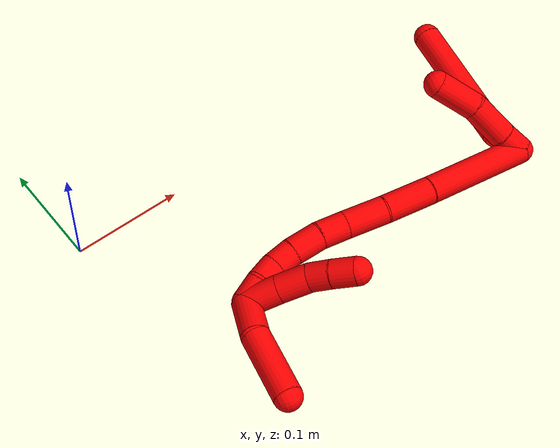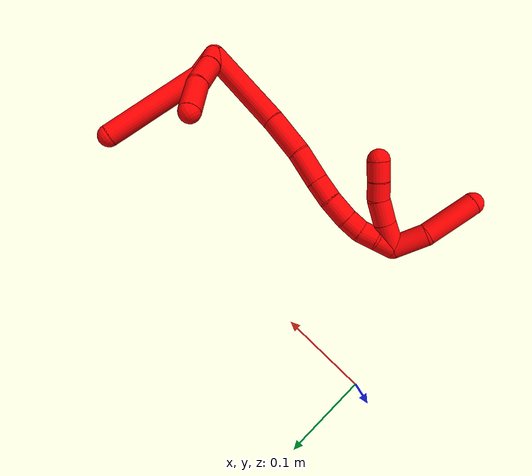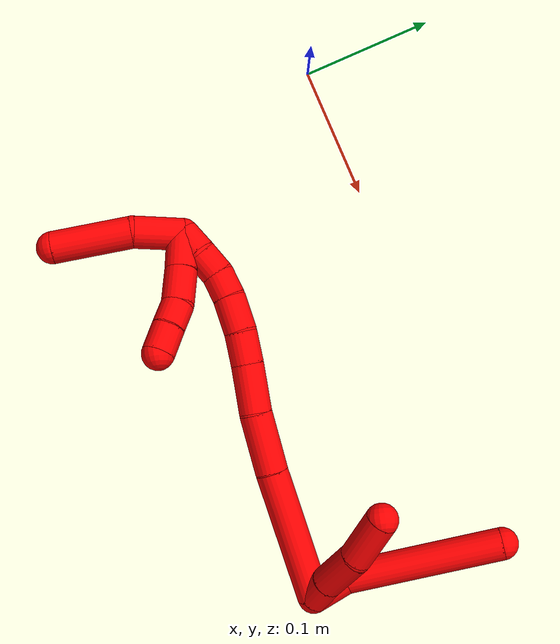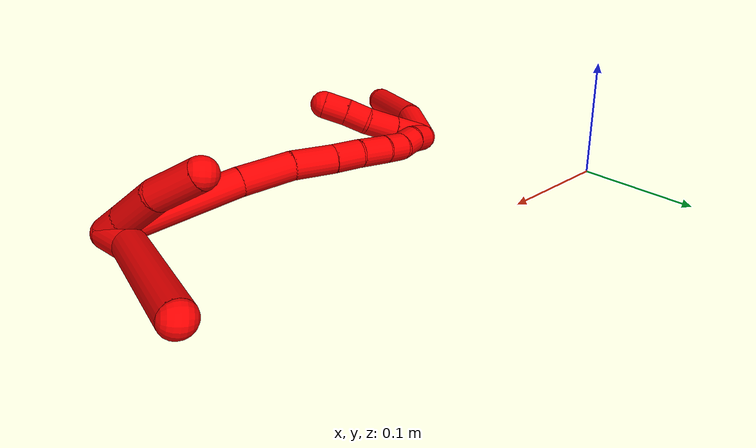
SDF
<sdf version="1.7">
 <world name="default">
  <model name="2">
   <static>0</static>
   <link name="2">
    <collision name="collision-cylinder-e_1_2_8">
     <pose>0.010844 0.007164 -0.005595 -2.23384 0.873151 -1.52629</pose>
     <geometry><cylinder><radius>0.0125</radius><length>0.028299</length></cylinder></geometry>
     <surface>
      <friction><ode><mu>1.16</mu><mu2>1.16</mu2><slip1>0</slip1><slip2>0</slip2></ode></friction>
      <contact><ode><kp>1e+06</kp><kd>1</kd><max_vel>0</max_vel><min_depth>0.001</min_depth></ode></contact>
     </surface>
    </collision>
    <visual name="visual-cylinder-e_1_2_8">
     <pose>0.010844 0.007164 -0.005595 -2.23384 0.873151 -1.52629</pose>
     <geometry><cylinder><radius>0.0125</radius><length>0.028299</length></cylinder></geometry>
     <material><ambient>1 0 0 1</ambient></material>
    </visual>
    <collision name="collision-cylinder-e_2_8_6">
     <pose>0.072441 0.047534 -0.016103 -1.71769 0.986461 -1.11422</pose>
     <geometry><cylinder><radius>0.0125</radius><length>0.121701</length></cylinder></geometry>
     <surface>
      <friction><ode><mu>1.16</mu><mu2>1.16</mu2><slip1>0</slip1><slip2>0</slip2></ode></friction>
      <contact><ode><kp>1e+06</kp><kd>1</kd><max_vel>0</max_vel><min_depth>0.001</min_depth></ode></contact>
     </surface>
    </collision>
    <visual name="visual-cylinder-e_2_8_6">
     <pose>0.072441 0.047534 -0.016103 -1.71769 0.986461 -1.11422</pose>
     <geometry><cylinder><radius>0.0125</radius><length>0.121701</length></cylinder></geometry>
     <material><ambient>1 0 0 1</ambient></material>
    </visual>
    <collision name="collision-cylinder-e_1_2_9">
     <pose>0.001395 0.009823 -0.004517 -2.00178 0.128354 -0.199898</pose>
     <geometry><cylinder><radius>0.0125</radius><length>0.021802</length></cylinder></geometry>
     <surface>
      <friction><ode><mu>1.16</mu><mu2>1.16</mu2><slip1>0</slip1><slip2>0</slip2></ode></friction>
      <contact><ode><kp>1e+06</kp><kd>1</kd><max_vel>0</max_vel><min_depth>0.001</min_depth></ode></contact>
     </surface>
    </collision>
    <visual name="visual-cylinder-e_1_2_9">
     <pose>0.001395 0.009823 -0.004517 -2.00178 0.128354 -0.199898</pose>
     <geometry><cylinder><radius>0.0125</radius><length>0.021802</length></cylinder></geometry>
     <material><ambient>1 0 0 1</ambient></material>
    </visual>
    <collision name="collision-cylinder-e_2_9_10">
     <pose>0.006544 0.03717 -0.015825 -1.94051 0.197083 -0.286695</pose>
     <geometry><cylinder><radius>0.0125</radius><length>0.038331</length></cylinder></geometry>
     <surface>
      <friction><ode><mu>1.16</mu><mu2>1.16</mu2><slip1>0</slip1><slip2>0</slip2></ode></friction>
      <contact><ode><kp>1e+06</kp><kd>1</kd><max_vel>0</max_vel><min_depth>0.001</min_depth></ode></contact>
     </surface>
    </collision>
    <visual name="visual-cylinder-e_2_9_10">
     <pose>0.006544 0.03717 -0.015825 -1.94051 0.197083 -0.286695</pose>
     <geometry><cylinder><radius>0.0125</radius><length>0.038331</length></cylinder></geometry>
     <material><ambient>1 0 0 1</ambient></material>
    </visual>
    <collision name="collision-cylinder-e_3_10_5">
     <pose>0.014105 0.070776 -0.033761 -2.17686 0.192275 -0.364257</pose>
     <geometry><cylinder><radius>0.0125</radius><length>0.039867</length></cylinder></geometry>
     <surface>
      <friction><ode><mu>1.16</mu><mu2>1.16</mu2><slip1>0</slip1><slip2>0</slip2></ode></friction>
      <contact><ode><kp>1e+06</kp><kd>1</kd><max_vel>0</max_vel><min_depth>0.001</min_depth></ode></contact>
     </surface>
    </collision>
    <visual name="visual-cylinder-e_3_10_5">
     <pose>0.014105 0.070776 -0.033761 -2.17686 0.192275 -0.364257</pose>
     <geometry><cylinder><radius>0.0125</radius><length>0.039867</length></cylinder></geometry>
     <material><ambient>1 0 0 1</ambient></material>
    </visual>
    <collision name="collision-cylinder-e_1_2_11">
     <pose>-0.017097 0.011759 -0.04704 -2.89663 -0.338998 1.89452</pose>
     <geometry><cylinder><radius>0.0125</radius><length>0.102827</length></cylinder></geometry>
     <surface>
      <friction><ode><mu>1.16</mu><mu2>1.16</mu2><slip1>0</slip1><slip2>0</slip2></ode></friction>
      <contact><ode><kp>1e+06</kp><kd>1</kd><max_vel>0</max_vel><min_depth>0.001</min_depth></ode></contact>
     </surface>
    </collision>
    <visual name="visual-cylinder-e_1_2_11">
     <pose>-0.017097 0.011759 -0.04704 -2.89663 -0.338998 1.89452</pose>
     <geometry><cylinder><radius>0.0125</radius><length>0.102827</length></cylinder></geometry>
     <material><ambient>1 0 0 1</ambient></material>
    </visual>
    <collision name="collision-cylinder-e_2_11_12">
     <pose>-0.04031 0.028384 -0.115709 -2.9203 -0.269154 1.76727</pose>
     <geometry><cylinder><radius>0.0125</radius><length>0.045995</length></cylinder></geometry>
     <surface>
      <friction><ode><mu>1.16</mu><mu2>1.16</mu2><slip1>0</slip1><slip2>0</slip2></ode></friction>
      <contact><ode><kp>1e+06</kp><kd>1</kd><max_vel>0</max_vel><min_depth>0.001</min_depth></ode></contact>
     </surface>
    </collision>
    <visual name="visual-cylinder-e_2_11_12">
     <pose>-0.04031 0.028384 -0.115709 -2.9203 -0.269154 1.76727</pose>
     <geometry><cylinder><radius>0.0125</radius><length>0.045995</length></cylinder></geometry>
     <material><ambient>1 0 0 1</ambient></material>
    </visual>
    <collision name="collision-cylinder-e_3_12_13">
     <pose>-0.048948 0.036368 -0.155601 -2.97249 -0.135365 1.34922</pose>
     <geometry><cylinder><radius>0.0125</radius><length>0.037397</length></cylinder></geometry>
     <surface>
      <friction><ode><mu>1.16</mu><mu2>1.16</mu2><slip1>0</slip1><slip2>0</slip2></ode></friction>
      <contact><ode><kp>1e+06</kp><kd>1</kd><max_vel>0</max_vel><min_depth>0.001</min_depth></ode></contact>
     </surface>
    </collision>
    <visual name="visual-cylinder-e_3_12_13">
     <pose>-0.048948 0.036368 -0.155601 -2.97249 -0.135365 1.34922</pose>
     <geometry><cylinder><radius>0.0125</radius><length>0.037397</length></cylinder></geometry>
     <material><ambient>1 0 0 1</ambient></material>
    </visual>
    <collision name="collision-cylinder-e_4_13_14">
     <pose>-0.05378 0.041705 -0.185944 -2.95994 -0.185767 1.59333</pose>
     <geometry><cylinder><radius>0.0125</radius><length>0.024995</length></cylinder></geometry>
     <surface>
      <friction><ode><mu>1.16</mu><mu2>1.16</mu2><slip1>0</slip1><slip2>0</slip2></ode></friction>
      <contact><ode><kp>1e+06</kp><kd>1</kd><max_vel>0</max_vel><min_depth>0.001</min_depth></ode></contact>
     </surface>
    </collision>
    <visual name="visual-cylinder-e_4_13_14">
     <pose>-0.05378 0.041705 -0.185944 -2.95994 -0.185767 1.59333</pose>
     <geometry><cylinder><radius>0.0125</radius><length>0.024995</length></cylinder></geometry>
     <material><ambient>1 0 0 1</ambient></material>
    </visual>
    <collision name="collision-cylinder-e_5_14_15">
     <pose>-0.059386 0.044458 -0.211326 -3.10151 -0.242813 2.81591</pose>
     <geometry><cylinder><radius>0.0125</radius><length>0.02743</length></cylinder></geometry>
     <surface>
      <friction><ode><mu>1.16</mu><mu2>1.16</mu2><slip1>0</slip1><slip2>0</slip2></ode></friction>
      <contact><ode><kp>1e+06</kp><kd>1</kd><max_vel>0</max_vel><min_depth>0.001</min_depth></ode></contact>
     </surface>
    </collision>
    <visual name="visual-cylinder-e_5_14_15">
     <pose>-0.059386 0.044458 -0.211326 -3.10151 -0.242813 2.81591</pose>
     <geometry><cylinder><radius>0.0125</radius><length>0.02743</length></cylinder></geometry>
     <material><ambient>1 0 0 1</ambient></material>
    </visual>
    <collision name="collision-cylinder-e_6_15_16">
     <pose>-0.066067 0.044415 -0.234195 3.08143 -0.339414 -2.79396</pose>
     <geometry><cylinder><radius>0.0125</radius><length>0.020327</length></cylinder></geometry>
     <surface>
      <friction><ode><mu>1.16</mu><mu2>1.16</mu2><slip1>0</slip1><slip2>0</slip2></ode></friction>
      <contact><ode><kp>1e+06</kp><kd>1</kd><max_vel>0</max_vel><min_depth>0.001</min_depth></ode></contact>
     </surface>
    </collision>
    <visual name="visual-cylinder-e_6_15_16">
     <pose>-0.066067 0.044415 -0.234195 3.08143 -0.339414 -2.79396</pose>
     <geometry><cylinder><radius>0.0125</radius><length>0.020327</length></cylinder></geometry>
     <material><ambient>1 0 0 1</ambient></material>
    </visual>
    <collision name="collision-cylinder-e_7_16_17">
     <pose>-0.075394 0.043398 -0.251798 3.08677 -0.635954 -2.97537</pose>
     <geometry><cylinder><radius>0.0125</radius><length>0.020011</length></cylinder></geometry>
     <surface>
      <friction><ode><mu>1.16</mu><mu2>1.16</mu2><slip1>0</slip1><slip2>0</slip2></ode></friction>
      <contact><ode><kp>1e+06</kp><kd>1</kd><max_vel>0</max_vel><min_depth>0.001</min_depth></ode></contact>
     </surface>
    </collision>
    <visual name="visual-cylinder-e_7_16_17">
     <pose>-0.075394 0.043398 -0.251798 3.08677 -0.635954 -2.97537</pose>
     <geometry><cylinder><radius>0.0125</radius><length>0.020011</length></cylinder></geometry>
     <material><ambient>1 0 0 1</ambient></material>
    </visual>
    <collision name="collision-cylinder-e_8_17_1">
     <pose>-0.086538 0.040264 -0.268562 2.84226 -0.517748 -2.1063</pose>
     <geometry><cylinder><radius>0.0125</radius><length>0.021019</length></cylinder></geometry>
     <surface>
      <friction><ode><mu>1.16</mu><mu2>1.16</mu2><slip1>0</slip1><slip2>0</slip2></ode></friction>
      <contact><ode><kp>1e+06</kp><kd>1</kd><max_vel>0</max_vel><min_depth>0.001</min_depth></ode></contact>
     </surface>
    </collision>
    <visual name="visual-cylinder-e_8_17_1">
     <pose>-0.086538 0.040264 -0.268562 2.84226 -0.517748 -2.1063</pose>
     <geometry><cylinder><radius>0.0125</radius><length>0.021019</length></cylinder></geometry>
     <material><ambient>1 0 0 1</ambient></material>
    </visual>
    <collision name="collision-cylinder-e_1_1_18">
     <pose>-0.110528 0.033423 -0.279044 1.97138 -1.33549 -1.74416</pose>
     <geometry><cylinder><radius>0.0125</radius><length>0.038643</length></cylinder></geometry>
     <surface>
      <friction><ode><mu>1.16</mu><mu2>1.16</mu2><slip1>0</slip1><slip2>0</slip2></ode></friction>
      <contact><ode><kp>1e+06</kp><kd>1</kd><max_vel>0</max_vel><min_depth>0.001</min_depth></ode></contact>
     </surface>
    </collision>
    <visual name="visual-cylinder-e_1_1_18">
     <pose>-0.110528 0.033423 -0.279044 1.97138 -1.33549 -1.74416</pose>
     <geometry><cylinder><radius>0.0125</radius><length>0.038643</length></cylinder></geometry>
     <material><ambient>1 0 0 1</ambient></material>
    </visual>
    <collision name="collision-cylinder-e_2_18_4">
     <pose>-0.156429 0.01507 -0.278717 1.42512 -1.08379 -0.959245</pose>
     <geometry><cylinder><radius>0.0125</radius><length>0.061357</length></cylinder></geometry>
     <surface>
      <friction><ode><mu>1.16</mu><mu2>1.16</mu2><slip1>0</slip1><slip2>0</slip2></ode></friction>
      <contact><ode><kp>1e+06</kp><kd>1</kd><max_vel>0</max_vel><min_depth>0.001</min_depth></ode></contact>
     </surface>
    </collision>
    <visual name="visual-cylinder-e_2_18_4">
     <pose>-0.156429 0.01507 -0.278717 1.42512 -1.08379 -0.959245</pose>
     <geometry><cylinder><radius>0.0125</radius><length>0.061357</length></cylinder></geometry>
     <material><ambient>1 0 0 1</ambient></material>
    </visual>
    <collision name="collision-cylinder-e_1_1_19">
     <pose>-0.094496 0.038463 -0.26224 -0.059194 -0.180909 0.005371</pose>
     <geometry><cylinder><radius>0.0125</radius><length>0.030647</length></cylinder></geometry>
     <surface>
      <friction><ode><mu>1.16</mu><mu2>1.16</mu2><slip1>0</slip1><slip2>0</slip2></ode></friction>
      <contact><ode><kp>1e+06</kp><kd>1</kd><max_vel>0</max_vel><min_depth>0.001</min_depth></ode></contact>
     </surface>
    </collision>
    <visual name="visual-cylinder-e_1_1_19">
     <pose>-0.094496 0.038463 -0.26224 -0.059194 -0.180909 0.005371</pose>
     <geometry><cylinder><radius>0.0125</radius><length>0.030647</length></cylinder></geometry>
     <material><ambient>1 0 0 1</ambient></material>
    </visual>
    <collision name="collision-cylinder-e_2_19_20">
     <pose>-0.100372 0.03998 -0.233718 -0.046437 -0.22722 0.005299</pose>
     <geometry><cylinder><radius>0.0125</radius><length>0.027691</length></cylinder></geometry>
     <surface>
      <friction><ode><mu>1.16</mu><mu2>1.16</mu2><slip1>0</slip1><slip2>0</slip2></ode></friction>
      <contact><ode><kp>1e+06</kp><kd>1</kd><max_vel>0</max_vel><min_depth>0.001</min_depth></ode></contact>
     </surface>
    </collision>
    <visual name="visual-cylinder-e_2_19_20">
     <pose>-0.100372 0.03998 -0.233718 -0.046437 -0.22722 0.005299</pose>
     <geometry><cylinder><radius>0.0125</radius><length>0.027691</length></cylinder></geometry>
     <material><ambient>1 0 0 1</ambient></material>
    </visual>
    <collision name="collision-cylinder-e_3_20_21">
     <pose>-0.108122 0.040491 -0.211377 0.013015 -0.48131 -0.003194</pose>
     <geometry><cylinder><radius>0.0125</radius><length>0.020007</length></cylinder></geometry>
     <surface>
      <friction><ode><mu>1.16</mu><mu2>1.16</mu2><slip1>0</slip1><slip2>0</slip2></ode></friction>
      <contact><ode><kp>1e+06</kp><kd>1</kd><max_vel>0</max_vel><min_depth>0.001</min_depth></ode></contact>
     </surface>
    </collision>
    <visual name="visual-cylinder-e_3_20_21">
     <pose>-0.108122 0.040491 -0.211377 0.013015 -0.48131 -0.003194</pose>
     <geometry><cylinder><radius>0.0125</radius><length>0.020007</length></cylinder></geometry>
     <material><ambient>1 0 0 1</ambient></material>
    </visual>
    <collision name="collision-cylinder-e_4_21_3">
     <pose>-0.1174 0.03945 -0.192775 0.094853 -0.443589 -0.021405</pose>
     <geometry><cylinder><radius>0.0125</radius><length>0.021655</length></cylinder></geometry>
     <surface>
      <friction><ode><mu>1.16</mu><mu2>1.16</mu2><slip1>0</slip1><slip2>0</slip2></ode></friction>
      <contact><ode><kp>1e+06</kp><kd>1</kd><max_vel>0</max_vel><min_depth>0.001</min_depth></ode></contact>
     </surface>
    </collision>
    <visual name="visual-cylinder-e_4_21_3">
     <pose>-0.1174 0.03945 -0.192775 0.094853 -0.443589 -0.021405</pose>
     <geometry><cylinder><radius>0.0125</radius><length>0.021655</length></cylinder></geometry>
     <material><ambient>1 0 0 1</ambient></material>
    </visual>
    <collision name="collision-sphere-3">
     <pose>-0.122047 0.038523 -0.183039 0 -0 0</pose>
     <geometry><sphere><radius>0.0125</radius></sphere></geometry>
     <surface>
      <friction><ode><mu>1.16</mu><mu2>1.16</mu2><slip1>0</slip1><slip2>0</slip2></ode></friction>
      <contact><ode><kp>1e+06</kp><kd>1</kd><max_vel>0</max_vel><min_depth>0.001</min_depth></ode></contact>
     </surface>
    </collision>
    <visual name="visual-sphere-3">
     <pose>-0.122047 0.038523 -0.183039 0 -0 0</pose>
     <geometry><sphere><radius>0.0125</radius></sphere></geometry>
     <material><ambient>1 0 0 1</ambient></material>
    </visual>
    <collision name="collision-sphere-21">
     <pose>-0.112753 0.040376 -0.202511 0 -0 0</pose>
     <geometry><sphere><radius>0.0125</radius></sphere></geometry>
     <surface>
      <friction><ode><mu>1.16</mu><mu2>1.16</mu2><slip1>0</slip1><slip2>0</slip2></ode></friction>
      <contact><ode><kp>1e+06</kp><kd>1</kd><max_vel>0</max_vel><min_depth>0.001</min_depth></ode></contact>
     </surface>
    </collision>
    <visual name="visual-sphere-21">
     <pose>-0.112753 0.040376 -0.202511 0 -0 0</pose>
     <geometry><sphere><radius>0.0125</radius></sphere></geometry>
     <material><ambient>1 0 0 1</ambient></material>
    </visual>
    <collision name="collision-sphere-20">
     <pose>-0.103491 0.040607 -0.220243 0 -0 0</pose>
     <geometry><sphere><radius>0.0125</radius></sphere></geometry>
     <surface>
      <friction><ode><mu>1.16</mu><mu2>1.16</mu2><slip1>0</slip1><slip2>0</slip2></ode></friction>
      <contact><ode><kp>1e+06</kp><kd>1</kd><max_vel>0</max_vel><min_depth>0.001</min_depth></ode></contact>
     </surface>
    </collision>
    <visual name="visual-sphere-20">
     <pose>-0.103491 0.040607 -0.220243 0 -0 0</pose>
     <geometry><sphere><radius>0.0125</radius></sphere></geometry>
     <material><ambient>1 0 0 1</ambient></material>
    </visual>
    <collision name="collision-sphere-19">
     <pose>-0.097253 0.039354 -0.247194 0 -0 0</pose>
     <geometry><sphere><radius>0.0125</radius></sphere></geometry>
     <surface>
      <friction><ode><mu>1.16</mu><mu2>1.16</mu2><slip1>0</slip1><slip2>0</slip2></ode></friction>
      <contact><ode><kp>1e+06</kp><kd>1</kd><max_vel>0</max_vel><min_depth>0.001</min_depth></ode></contact>
     </surface>
    </collision>
    <visual name="visual-sphere-19">
     <pose>-0.097253 0.039354 -0.247194 0 -0 0</pose>
     <geometry><sphere><radius>0.0125</radius></sphere></geometry>
     <material><ambient>1 0 0 1</ambient></material>
    </visual>
    <collision name="collision-sphere-5">
     <pose>0.017915 0.086857 -0.044907 0 -0 0</pose>
     <geometry><sphere><radius>0.0125</radius></sphere></geometry>
     <surface>
      <friction><ode><mu>1.16</mu><mu2>1.16</mu2><slip1>0</slip1><slip2>0</slip2></ode></friction>
      <contact><ode><kp>1e+06</kp><kd>1</kd><max_vel>0</max_vel><min_depth>0.001</min_depth></ode></contact>
     </surface>
    </collision>
    <visual name="visual-sphere-5">
     <pose>0.017915 0.086857 -0.044907 0 -0 0</pose>
     <geometry><sphere><radius>0.0125</radius></sphere></geometry>
     <material><ambient>1 0 0 1</ambient></material>
    </visual>
    <collision name="collision-sphere-10">
     <pose>0.010296 0.054695 -0.022616 0 -0 0</pose>
     <geometry><sphere><radius>0.0125</radius></sphere></geometry>
     <surface>
      <friction><ode><mu>1.16</mu><mu2>1.16</mu2><slip1>0</slip1><slip2>0</slip2></ode></friction>
      <contact><ode><kp>1e+06</kp><kd>1</kd><max_vel>0</max_vel><min_depth>0.001</min_depth></ode></contact>
     </surface>
    </collision>
    <visual name="visual-sphere-10">
     <pose>0.010296 0.054695 -0.022616 0 -0 0</pose>
     <geometry><sphere><radius>0.0125</radius></sphere></geometry>
     <material><ambient>1 0 0 1</ambient></material>
    </visual>
    <collision name="collision-sphere-6">
     <pose>0.123195 0.080741 -0.021016 0 -0 0</pose>
     <geometry><sphere><radius>0.0125</radius></sphere></geometry>
     <surface>
      <friction><ode><mu>1.16</mu><mu2>1.16</mu2><slip1>0</slip1><slip2>0</slip2></ode></friction>
      <contact><ode><kp>1e+06</kp><kd>1</kd><max_vel>0</max_vel><min_depth>0.001</min_depth></ode></contact>
     </surface>
    </collision>
    <visual name="visual-sphere-6">
     <pose>0.123195 0.080741 -0.021016 0 -0 0</pose>
     <geometry><sphere><radius>0.0125</radius></sphere></geometry>
     <material><ambient>1 0 0 1</ambient></material>
    </visual>
    <collision name="collision-sphere-9">
     <pose>0.002791 0.019646 -0.009033 0 -0 0</pose>
     <geometry><sphere><radius>0.0125</radius></sphere></geometry>
     <surface>
      <friction><ode><mu>1.16</mu><mu2>1.16</mu2><slip1>0</slip1><slip2>0</slip2></ode></friction>
      <contact><ode><kp>1e+06</kp><kd>1</kd><max_vel>0</max_vel><min_depth>0.001</min_depth></ode></contact>
     </surface>
    </collision>
    <visual name="visual-sphere-9">
     <pose>0.002791 0.019646 -0.009033 0 -0 0</pose>
     <geometry><sphere><radius>0.0125</radius></sphere></geometry>
     <material><ambient>1 0 0 1</ambient></material>
    </visual>
    <collision name="collision-sphere-2">
     <geometry><sphere><radius>0.0125</radius></sphere></geometry>
     <surface>
      <friction><ode><mu>1.16</mu><mu2>1.16</mu2><slip1>0</slip1><slip2>0</slip2></ode></friction>
      <contact><ode><kp>1e+06</kp><kd>1</kd><max_vel>0</max_vel><min_depth>0.001</min_depth></ode></contact>
     </surface>
    </collision>
    <visual name="visual-sphere-2">
     <geometry><sphere><radius>0.0125</radius></sphere></geometry>
     <material><ambient>1 0 0 1</ambient></material>
    </visual>
    <collision name="collision-sphere-8">
     <pose>0.021687 0.014328 -0.01119 0 -0 0</pose>
     <geometry><sphere><radius>0.0125</radius></sphere></geometry>
     <surface>
      <friction><ode><mu>1.16</mu><mu2>1.16</mu2><slip1>0</slip1><slip2>0</slip2></ode></friction>
      <contact><ode><kp>1e+06</kp><kd>1</kd><max_vel>0</max_vel><min_depth>0.001</min_depth></ode></contact>
     </surface>
    </collision>
    <visual name="visual-sphere-8">
     <pose>0.021687 0.014328 -0.01119 0 -0 0</pose>
     <geometry><sphere><radius>0.0125</radius></sphere></geometry>
     <material><ambient>1 0 0 1</ambient></material>
    </visual>
    <collision name="collision-sphere-11">
     <pose>-0.034194 0.023518 -0.09408 0 -0 0</pose>
     <geometry><sphere><radius>0.0125</radius></sphere></geometry>
     <surface>
      <friction><ode><mu>1.16</mu><mu2>1.16</mu2><slip1>0</slip1><slip2>0</slip2></ode></friction>
      <contact><ode><kp>1e+06</kp><kd>1</kd><max_vel>0</max_vel><min_depth>0.001</min_depth></ode></contact>
     </surface>
    </collision>
    <visual name="visual-sphere-11">
     <pose>-0.034194 0.023518 -0.09408 0 -0 0</pose>
     <geometry><sphere><radius>0.0125</radius></sphere></geometry>
     <material><ambient>1 0 0 1</ambient></material>
    </visual>
    <collision name="collision-sphere-12">
     <pose>-0.046425 0.03325 -0.137337 0 -0 0</pose>
     <geometry><sphere><radius>0.0125</radius></sphere></geometry>
     <surface>
      <friction><ode><mu>1.16</mu><mu2>1.16</mu2><slip1>0</slip1><slip2>0</slip2></ode></friction>
      <contact><ode><kp>1e+06</kp><kd>1</kd><max_vel>0</max_vel><min_depth>0.001</min_depth></ode></contact>
     </surface>
    </collision>
    <visual name="visual-sphere-12">
     <pose>-0.046425 0.03325 -0.137337 0 -0 0</pose>
     <geometry><sphere><radius>0.0125</radius></sphere></geometry>
     <material><ambient>1 0 0 1</ambient></material>
    </visual>
    <collision name="collision-sphere-13">
     <pose>-0.051472 0.039486 -0.173864 0 -0 0</pose>
     <geometry><sphere><radius>0.0125</radius></sphere></geometry>
     <surface>
      <friction><ode><mu>1.16</mu><mu2>1.16</mu2><slip1>0</slip1><slip2>0</slip2></ode></friction>
      <contact><ode><kp>1e+06</kp><kd>1</kd><max_vel>0</max_vel><min_depth>0.001</min_depth></ode></contact>
     </surface>
    </collision>
    <visual name="visual-sphere-13">
     <pose>-0.051472 0.039486 -0.173864 0 -0 0</pose>
     <geometry><sphere><radius>0.0125</radius></sphere></geometry>
     <material><ambient>1 0 0 1</ambient></material>
    </visual>
    <collision name="collision-sphere-14">
     <pose>-0.056088 0.043924 -0.198024 0 -0 0</pose>
     <geometry><sphere><radius>0.0125</radius></sphere></geometry>
     <surface>
      <friction><ode><mu>1.16</mu><mu2>1.16</mu2><slip1>0</slip1><slip2>0</slip2></ode></friction>
      <contact><ode><kp>1e+06</kp><kd>1</kd><max_vel>0</max_vel><min_depth>0.001</min_depth></ode></contact>
     </surface>
    </collision>
    <visual name="visual-sphere-14">
     <pose>-0.056088 0.043924 -0.198024 0 -0 0</pose>
     <geometry><sphere><radius>0.0125</radius></sphere></geometry>
     <material><ambient>1 0 0 1</ambient></material>
    </visual>
    <collision name="collision-sphere-15">
     <pose>-0.062683 0.044991 -0.224628 0 -0 0</pose>
     <geometry><sphere><radius>0.0125</radius></sphere></geometry>
     <surface>
      <friction><ode><mu>1.16</mu><mu2>1.16</mu2><slip1>0</slip1><slip2>0</slip2></ode></friction>
      <contact><ode><kp>1e+06</kp><kd>1</kd><max_vel>0</max_vel><min_depth>0.001</min_depth></ode></contact>
     </surface>
    </collision>
    <visual name="visual-sphere-15">
     <pose>-0.062683 0.044991 -0.224628 0 -0 0</pose>
     <geometry><sphere><radius>0.0125</radius></sphere></geometry>
     <material><ambient>1 0 0 1</ambient></material>
    </visual>
    <collision name="collision-sphere-16">
     <pose>-0.069451 0.043839 -0.243761 0 -0 0</pose>
     <geometry><sphere><radius>0.0125</radius></sphere></geometry>
     <surface>
      <friction><ode><mu>1.16</mu><mu2>1.16</mu2><slip1>0</slip1><slip2>0</slip2></ode></friction>
      <contact><ode><kp>1e+06</kp><kd>1</kd><max_vel>0</max_vel><min_depth>0.001</min_depth></ode></contact>
     </surface>
    </collision>
    <visual name="visual-sphere-16">
     <pose>-0.069451 0.043839 -0.243761 0 -0 0</pose>
     <geometry><sphere><radius>0.0125</radius></sphere></geometry>
     <material><ambient>1 0 0 1</ambient></material>
    </visual>
    <collision name="collision-sphere-17">
     <pose>-0.081336 0.042957 -0.259836 0 -0 0</pose>
     <geometry><sphere><radius>0.0125</radius></sphere></geometry>
     <surface>
      <friction><ode><mu>1.16</mu><mu2>1.16</mu2><slip1>0</slip1><slip2>0</slip2></ode></friction>
      <contact><ode><kp>1e+06</kp><kd>1</kd><max_vel>0</max_vel><min_depth>0.001</min_depth></ode></contact>
     </surface>
    </collision>
    <visual name="visual-sphere-17">
     <pose>-0.081336 0.042957 -0.259836 0 -0 0</pose>
     <geometry><sphere><radius>0.0125</radius></sphere></geometry>
     <material><ambient>1 0 0 1</ambient></material>
    </visual>
    <collision name="collision-sphere-1">
     <pose>-0.091739 0.037571 -0.277287 0 -0 0</pose>
     <geometry><sphere><radius>0.0125</radius></sphere></geometry>
     <surface>
      <friction><ode><mu>1.16</mu><mu2>1.16</mu2><slip1>0</slip1><slip2>0</slip2></ode></friction>
      <contact><ode><kp>1e+06</kp><kd>1</kd><max_vel>0</max_vel><min_depth>0.001</min_depth></ode></contact>
     </surface>
    </collision>
    <visual name="visual-sphere-1">
     <pose>-0.091739 0.037571 -0.277287 0 -0 0</pose>
     <geometry><sphere><radius>0.0125</radius></sphere></geometry>
     <material><ambient>1 0 0 1</ambient></material>
    </visual>
    <collision name="collision-sphere-18">
     <pose>-0.129317 0.029275 -0.280801 0 -0 0</pose>
     <geometry><sphere><radius>0.0125</radius></sphere></geometry>
     <surface>
      <friction><ode><mu>1.16</mu><mu2>1.16</mu2><slip1>0</slip1><slip2>0</slip2></ode></friction>
      <contact><ode><kp>1e+06</kp><kd>1</kd><max_vel>0</max_vel><min_depth>0.001</min_depth></ode></contact>
     </surface>
    </collision>
    <visual name="visual-sphere-18">
     <pose>-0.129317 0.029275 -0.280801 0 -0 0</pose>
     <geometry><sphere><radius>0.0125</radius></sphere></geometry>
     <material><ambient>1 0 0 1</ambient></material>
    </visual>
    <collision name="collision-sphere-4">
     <pose>-0.183541 0.000865 -0.276633 0 -0 0</pose>
     <geometry><sphere><radius>0.0125</radius></sphere></geometry>
     <surface>
      <friction><ode><mu>1.16</mu><mu2>1.16</mu2><slip1>0</slip1><slip2>0</slip2></ode></friction>
      <contact><ode><kp>1e+06</kp><kd>1</kd><max_vel>0</max_vel><min_depth>0.001</min_depth></ode></contact>
     </surface>
    </collision>
    <visual name="visual-sphere-4">
     <pose>-0.183541 0.000865 -0.276633 0 -0 0</pose>
     <geometry><sphere><radius>0.0125</radius></sphere></geometry>
     <material><ambient>1 0 0 1</ambient></material>
    </visual>
    <inertial>
     <pose>-0.036493 0.033825 -0.129109 0 -0 0</pose>
     <mass>0.75</mass>
     <inertia><ixx>3.4e-05</ixx><ixy>0</ixy><ixz>0</ixz><iyy>0.000199</iyy><iyz>0</iyz><izz>-0.0002</izz></inertia>
    </inertial>
   </link>
   <pose>0.370524 -0.156697 0.012445 1.2881 0.456518 1.15786</pose>
  </model>
 </world>
</sdf>
